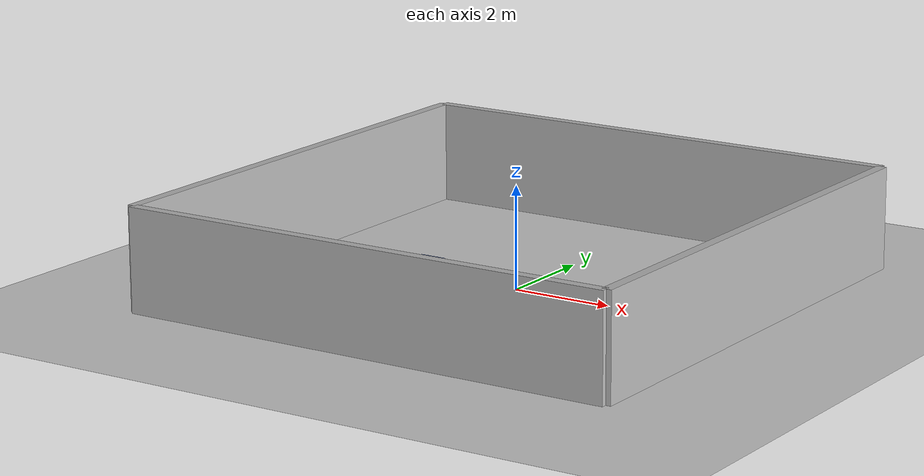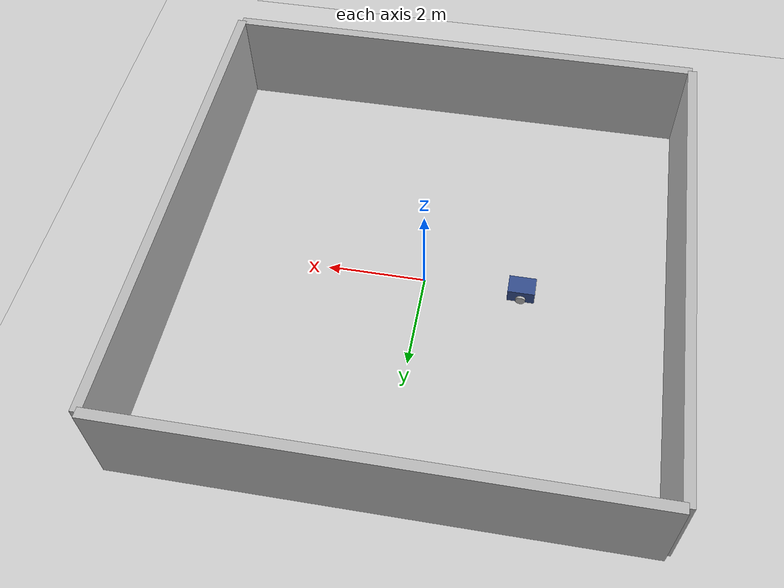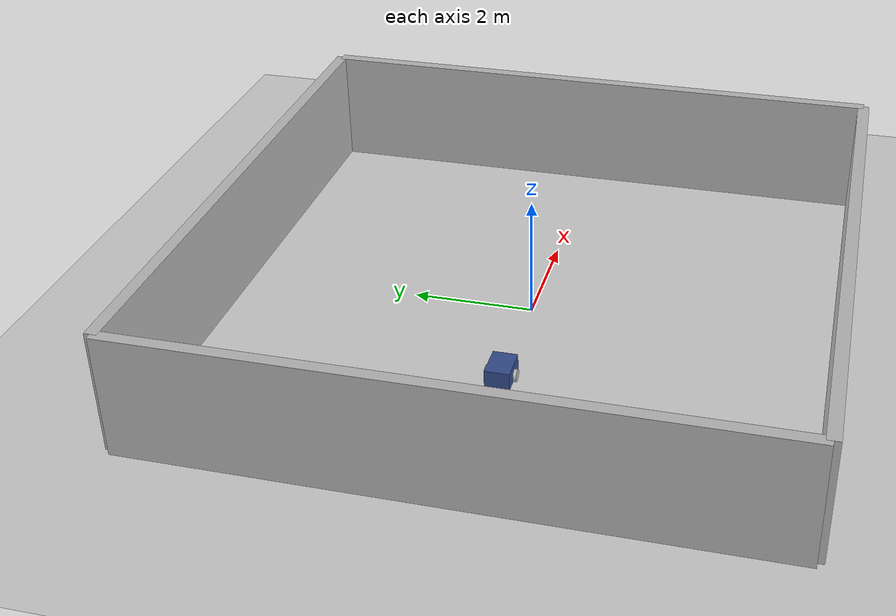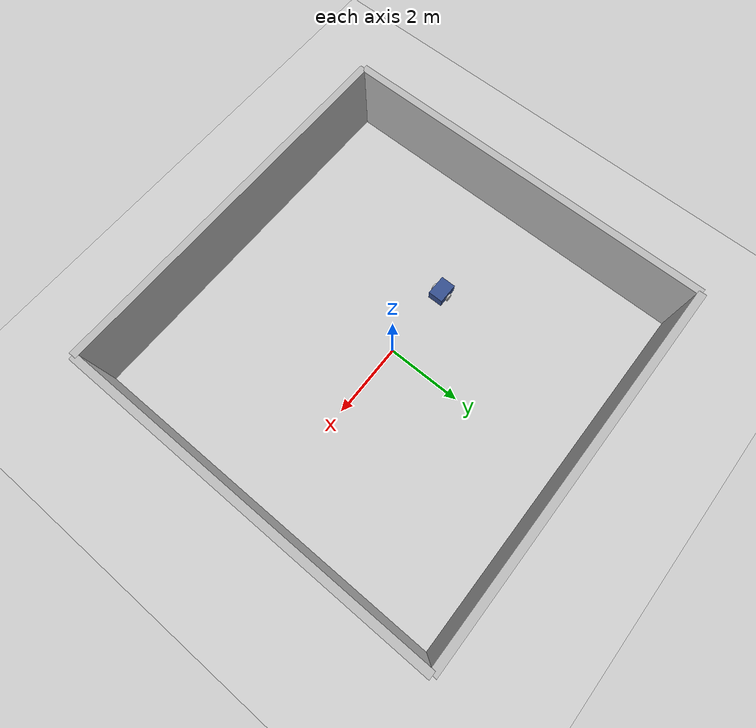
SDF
<?xml version="1.0"?>
<sdf version="1.9">
  <world name="patrol_world">

    <physics name="physics" type="gz">
      <max_step_size>0.001</max_step_size>
      <real_time_factor>1.0</real_time_factor>
    </physics>

    <plugin
      filename="gz-sim-physics-system"
      name="gz::sim::systems::Physics"/>

    <plugin
      filename="gz-sim-user-commands-system"
      name="gz::sim::systems::UserCommands"/>

    <plugin
      filename="gz-sim-scene-broadcaster-system"
      name="gz::sim::systems::SceneBroadcaster"/>

    <plugin
      filename="gz-sim-sensors-system"
      name="gz::sim::systems::Sensors">
      <render_engine>ogre2</render_engine>
    </plugin>

    <light type="directional" name="sun">
      <pose>0 0 10 0 0 0</pose>
      <diffuse>0.8 0.8 0.8 1</diffuse>
      <specular>0.2 0.2 0.2 1</specular>
      <direction>-0.5 0.1 -0.9</direction>
    </light>

    <model name="ground_plane">
      <static>true</static>
      <link name="link">
        <collision name="collision">
          <geometry>
            <plane>
              <normal>0 0 1</normal>
              <size>30 30</size>
            </plane>
          </geometry>
        </collision>

        <visual name="visual">
          <geometry>
            <plane>
              <normal>0 0 1</normal>
              <size>30 30</size>
            </plane>
          </geometry>
        </visual>
      </link>
    </model>

    <model name="wall_north">
      <static>true</static>
      <pose>0 5 1 0 0 0</pose>
      <link name="link">
        <collision name="collision">
          <geometry>
            <box>
              <size>10 0.2 2</size>
            </box>
          </geometry>
        </collision>
        <visual name="visual">
          <geometry>
            <box>
              <size>10 0.2 2</size>
            </box>
          </geometry>
        </visual>
      </link>
    </model>

    <model name="wall_south">
      <static>true</static>
      <pose>0 -5 1 0 0 0</pose>
      <link name="link">
        <collision name="collision">
          <geometry>
            <box>
              <size>10 0.2 2</size>
            </box>
          </geometry>
        </collision>
        <visual name="visual">
          <geometry>
            <box>
              <size>10 0.2 2</size>
            </box>
          </geometry>
        </visual>
      </link>
    </model>

    <model name="wall_east">
      <static>true</static>
      <pose>5 0 1 0 0 0</pose>
      <link name="link">
        <collision name="collision">
          <geometry>
            <box>
              <size>0.2 10 2</size>
            </box>
          </geometry>
        </collision>
        <visual name="visual">
          <geometry>
            <box>
              <size>0.2 10 2</size>
            </box>
          </geometry>
        </visual>
      </link>
    </model>

    <model name="wall_west">
      <static>true</static>
      <pose>-5 0 1 0 0 0</pose>
      <link name="link">
        <collision name="collision">
          <geometry>
            <box>
              <size>0.2 10 2</size>
            </box>
          </geometry>
        </collision>
        <visual name="visual">
          <geometry>
            <box>
              <size>0.2 10 2</size>
            </box>
          </geometry>
        </visual>
      </link>
    </model>

    <include>
      <uri>model://mini_dogu</uri>
      <name>robot1</name>
      <pose>-2 0 0 0 0 0</pose>
    </include>

  </world>
</sdf>

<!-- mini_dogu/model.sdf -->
<sdf version="1.9">
  <model name="mini_dogu">

    <pose>0 0 0.11 0 0 0</pose>

    <link name="base_link">
      <inertial>
        <mass>20.0</mass>
        <inertia>
          <ixx>0.416</ixx>
          <iyy>0.654</iyy>
          <izz>0.802</izz>
          <ixy>0.0</ixy>
          <ixz>0.0</ixz>
          <iyz>0.0</iyz>
        </inertia>
      </inertial>

      <collision name="base_collision">
        <pose>0 0 0.15 0 0 0</pose>
        <geometry>
          <box>
            <size>0.55 0.40 0.30</size>
          </box>
        </geometry>
      </collision>

      <visual name="base_visual">
        <pose>0 0 0.15 0 0 0</pose>
        <geometry>
          <box>
            <size>0.55 0.40 0.30</size>
          </box>
        </geometry>

        <material>
          <ambient>0.20 0.30 0.55 1.0</ambient>
          <diffuse>0.20 0.30 0.55 1.0</diffuse>
        </material>
      </visual>

      <sensor name="lidar" type="gpu_lidar">
        <pose>0.15 0 0.36 0 0 0</pose>

        <topic>/robot1/scan</topic>
        <gz_frame_id>robot1/lidar_link</gz_frame_id>

        <update_rate>5</update_rate>
        <always_on>true</always_on>
        <visualize>false</visualize>

        <ray>
          <scan>
            <horizontal>
              <samples>180</samples>
              <resolution>1</resolution>
              <min_angle>-3.14159265</min_angle>
              <max_angle>3.14159265</max_angle>
            </horizontal>

            <vertical>
              <samples>1</samples>
              <resolution>1</resolution>
              <min_angle>0</min_angle>
              <max_angle>0</max_angle>
            </vertical>
          </scan>

          <range>
            <min>0.10</min>
            <max>15.0</max>
            <resolution>0.02</resolution>
          </range>
        </ray>
      </sensor>
    </link>

    <link name="left_wheel">
      <pose>0 0.23 0.10 1.570796 0 0</pose>

      <inertial>
        <mass>1.0</mass>
        <inertia>
          <ixx>0.005</ixx>
          <iyy>0.005</iyy>
          <izz>0.005</izz>
        </inertia>
      </inertial>

      <collision name="collision">
        <geometry>
          <cylinder>
            <radius>0.10</radius>
            <length>0.05</length>
          </cylinder>
        </geometry>
      </collision>

      <visual name="visual">
        <geometry>
          <cylinder>
            <radius>0.10</radius>
            <length>0.05</length>
          </cylinder>
        </geometry>
      </visual>
    </link>

    <link name="right_wheel">
      <pose>0 -0.23 0.10 1.570796 0 0</pose>

      <inertial>
        <mass>1.0</mass>
        <inertia>
          <ixx>0.005</ixx>
          <iyy>0.005</iyy>
          <izz>0.005</izz>
        </inertia>
      </inertial>

      <collision name="collision">
        <geometry>
          <cylinder>
            <radius>0.10</radius>
            <length>0.05</length>
          </cylinder>
        </geometry>
      </collision>

      <visual name="visual">
        <geometry>
          <cylinder>
            <radius>0.10</radius>
            <length>0.05</length>
          </cylinder>
        </geometry>
      </visual>
    </link>

    <joint name="left_wheel_joint" type="revolute">
      <parent>base_link</parent>
      <child>left_wheel</child>

      <axis>
        <xyz>0 1 0</xyz>
        <limit>
          <lower>-1.0e16</lower>
          <upper>1.0e16</upper>
          <effort>100</effort>
          <velocity>20</velocity>
        </limit>
      </axis>
    </joint>

    <joint name="right_wheel_joint" type="revolute">
      <parent>base_link</parent>
      <child>right_wheel</child>

      <axis>
        <xyz>0 1 0</xyz>
        <limit>
          <lower>-1.0e16</lower>
          <upper>1.0e16</upper>
          <effort>100</effort>
          <velocity>20</velocity>
        </limit>
      </axis>
    </joint>

    <plugin
      filename="gz-sim-diff-drive-system"
      name="gz::sim::systems::DiffDrive">

      <left_joint>left_wheel_joint</left_joint>
      <right_joint>right_wheel_joint</right_joint>

      <wheel_separation>0.46</wheel_separation>
      <wheel_radius>0.10</wheel_radius>

      <topic>/robot1/cmd_vel</topic>
      <odom_topic>/robot1/odom</odom_topic>
      <tf_topic>/robot1/tf</tf_topic>

      <frame_id>robot1/odom</frame_id>
      <child_frame_id>robot1/base_link</child_frame_id>

      <odom_publish_frequency>30</odom_publish_frequency>

      <max_linear_velocity>1.0</max_linear_velocity>
      <max_angular_velocity>1.5</max_angular_velocity>
      <max_linear_acceleration>1.0</max_linear_acceleration>
      <max_angular_acceleration>2.0</max_angular_acceleration>
    </plugin>

  </model>
</sdf>
